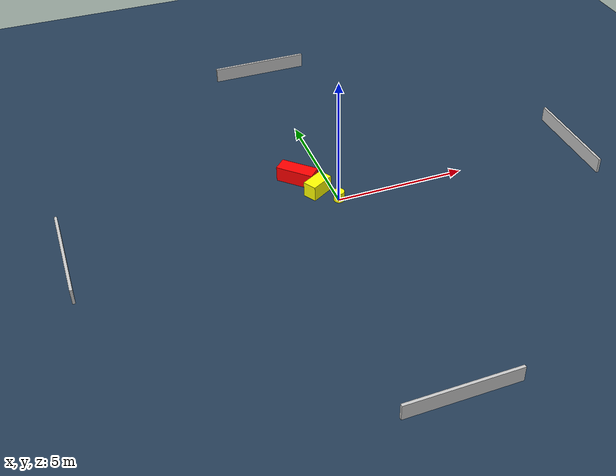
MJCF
<?xml version="1.0" ?>
<mujoco model="generated_environment">
  <option timestep="0.01" integrator="RK4" cone="elliptic"/>
  <default>
    <geom density="1"/>
  </default>
  <asset>
    <texture builtin="gradient" height="3072" name="skybox" rgb1="0.3 0.5 0.7" rgb2="0 0 0" type="skybox" width="512"/>
    <texture builtin="checker" height="300" name="groundplane" rgb1="0.2 0.3 0.4" rgb2="0.1 0.2 0.3" type="2d" width="300"/>
    <material name="groundplane" reflectance="0.2" texrepeat="5 5" texture="groundplane"/>
  </asset>
  <worldbody>
    <light dir="0 0 -1" directional="true" pos="0 0 1.5"/>
    <geom condim="3" friction="0.5 0.005 0.001" material="groundplane" name="floor" pos="0 0 0" size="0 0 0.05" type="plane"/>
    <body name="walls">
      <geom name="wall_1" condim="4" pos="-10.0 0.0 0.3" rgba="0.800000011920929 0.800000011920929 0.800000011920929 1.0" size="0.05 2.0 0.3" type="box"/>
      <geom name="wall_2" condim="4" pos="10.0 0.0 0.3" rgba="0.800000011920929 0.800000011920929 0.800000011920929 1.0" size="0.05 2.0 0.3" type="box"/>
      <geom name="wall_3" condim="4" pos="0.0 -10.0 0.3" rgba="0.800000011920929 0.800000011920929 0.800000011920929 1.0" size="2.0 0.05 0.3" type="box"/>
      <geom name="wall_4" condim="4" pos="0.0 10.0 0.3" rgba="0.800000011920929 0.800000011920929 0.800000011920929 1.0" size="2.0 0.05 0.3" type="box"/>
    </body>
    <body name="robot">
      <joint name="joint_x" type="slide" pos="0 0 0" axis="1 0 0"/>
      <joint name="joint_y" type="slide" pos="0 0 0" axis="0 1 0"/>
      <geom name="robot" type="cylinder" pos="0.0 0.0 0.2" size="0.2 0.2 0.0" mass="5.0" friction="1.0 0.005 0.0001" condim="4" rgba="1.0 1.0 0.0 1.0"/>
    </body>
    <body name="obstacle_1_movable">
      <geom name="obstacle_1_movable" condim="4" pos="-0.5819427837669895 0.7228393142598446 0.3" euler="0 0 210.0676489547047" friction="0.0 0.005 0.001" rgba="1.0 1.0 0.0 1.0" size="0.4782624449481335 0.2691674473357555 0.3" type="box" mass="0.1"/>
      <joint type="free"/>
    </body>
    <body name="obstacle_2_static">
      <geom name="obstacle_2_static" condim="4" pos="-1.0640322872925199 1.6841896487192682 0.3" euler="0 0 45.81321507506369" friction="0.0 0.005 0.001" rgba="1.0 0.0 0.0 1.0" size="0.2859048527318076 0.7342212294776524 0.3" type="box"/>
    </body>
  </worldbody>
  <actuator>
    <motor name="actuator_x" joint="joint_x" gear="1" ctrlrange="-1 1"/>
    <motor name="actuator_y" joint="joint_y" gear="1" ctrlrange="-1 1"/>
  </actuator>
</mujoco>
